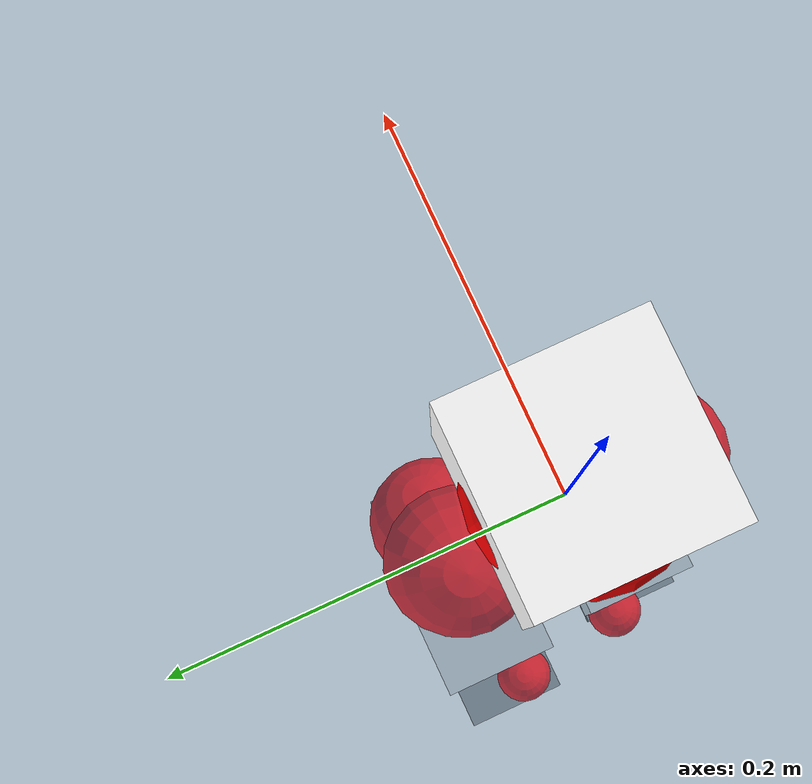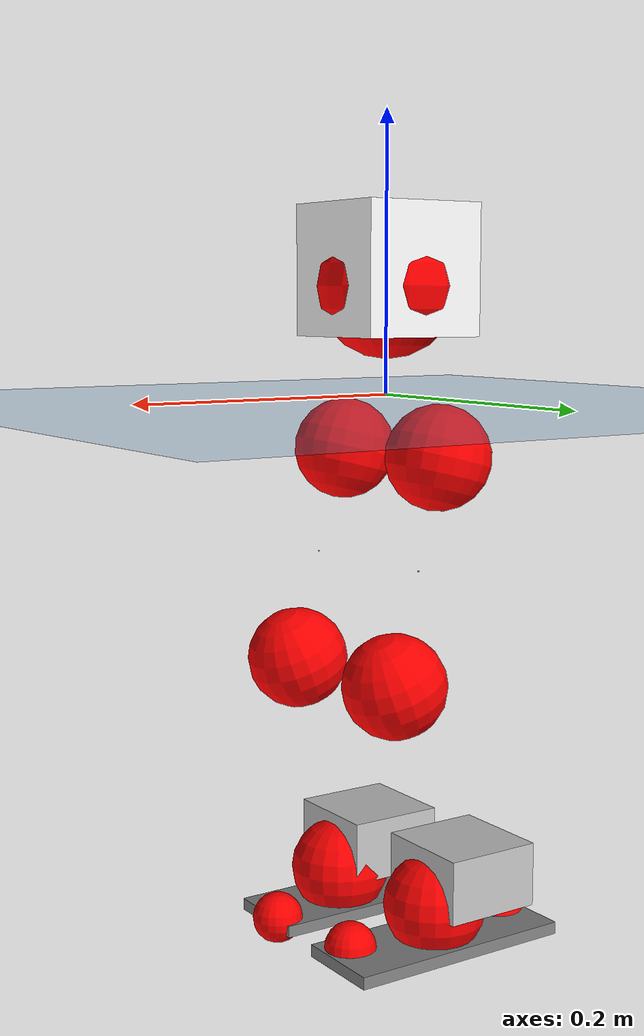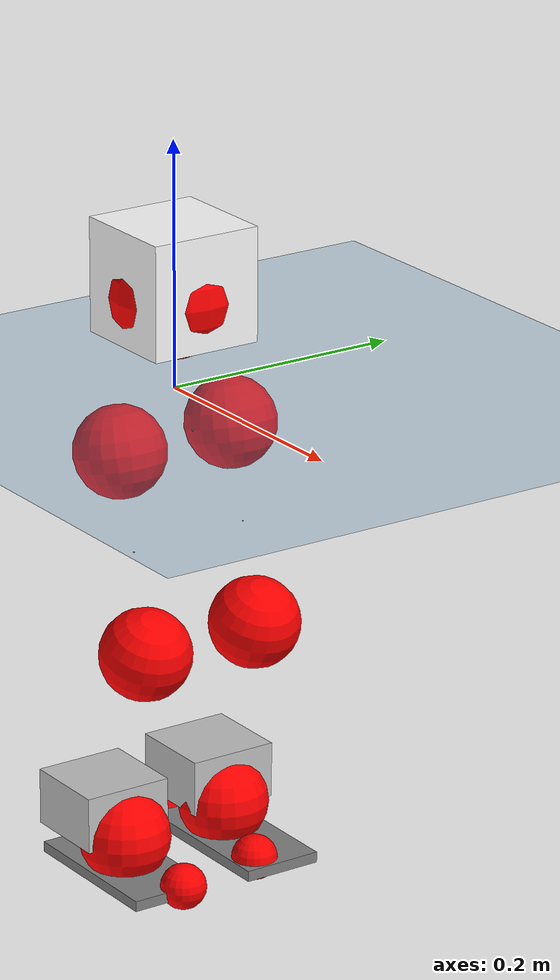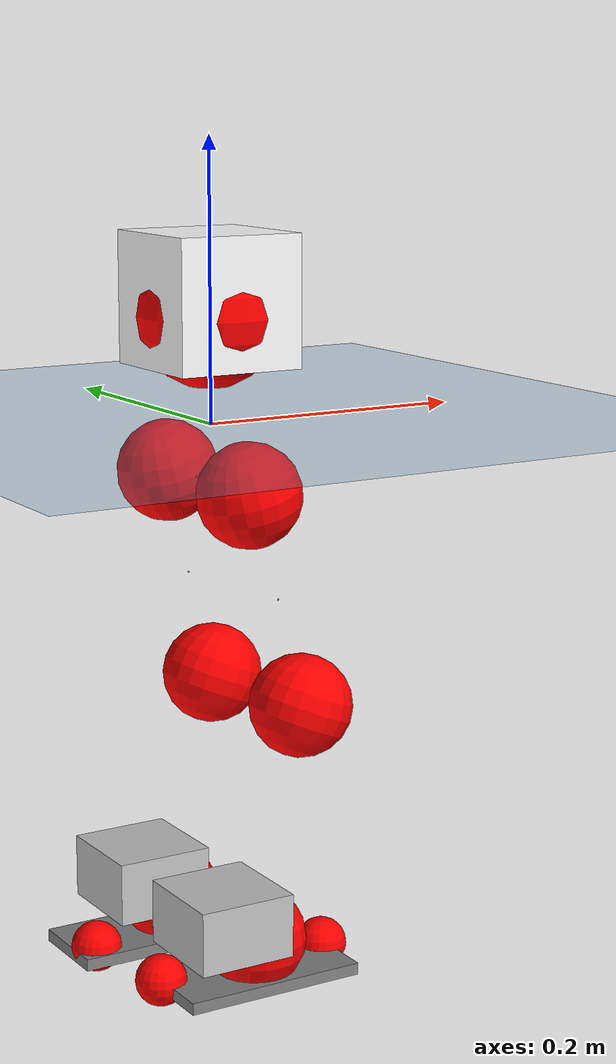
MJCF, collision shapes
<mujoco model="pi_12dof_release_v1">
  <compiler angle="radian" assetdir="assets" balanceinertia="true" inertiafromgeom="false"/>

  <option timestep="0.005" density="1.2" viscosity="2e-05"/>

  <size nkey="1"/>

  <visual>
    <quality shadowsize="8192"/>
    <map shadowclip="0.5"/>
  </visual>

  <default>
    <default class="/">
      <joint armature="0.01" damping="0.01" frictionloss="0.01"/>
      <geom contype="0" conaffinity="0" group="1" solref="-1000 -80"/>
      <site size="0.01 0.005 0.005" group="5"/>
      <general forcelimited="true" biastype="affine" gainprm="20" biasprm="0 -20 -0.5"/>
      <default class="foot">
        <geom size="0.0845 0.036 0.005" type="box" condim="6" group="4" priority="1" friction="0.9 0.2 0.2" solimp="0.015 1 0.005"/>
      </default>
      <default class="reward_collision_sphere">
        <geom group="5" rgba="1 0 0 1"/>
      </default>
    </default>
  </default>

  <asset>
    <texture type="skybox" colorspace="auto" name="//unnamed_texture_0" builtin="gradient" rgb1="0.95 0.95 0.95" rgb2="0.95 0.95 0.95" width="100" height="600"/>
    <texture type="2d" colorspace="auto" name="texplane" builtin="checker" rgb1="0.345 0.575 0.748" rgb2="0.345 0.575 0.748" markrgb="1 1 1" width="512" height="512"/>
    <material name="MatPlane" class="/" texture="texplane" texuniform="true" texrepeat="2 2" specular="0.9"/>
    <mesh name="baselink_1" class="/" file="baselink_1.STL"/>
    <mesh name="r_hip_pitch_link" class="/" file="r_hip_pitch_link.STL"/>
    <mesh name="r_hip_roll_link" class="/" file="r_hip_roll_link.STL"/>
    <mesh name="r_thigh_link" class="/" file="r_thigh_link.STL"/>
    <mesh name="r_calf_link" class="/" file="r_calf_link.STL"/>
    <mesh name="r_ankle_pitch_link" class="/" file="r_ankle_pitch_link.STL"/>
    <mesh name="r_ankle_roll_link" class="/" file="r_ankle_roll_link.STL"/>
    <mesh name="l_hip_pitch_link" class="/" file="l_hip_pitch_link.STL"/>
    <mesh name="l_hip_roll_link" class="/" file="l_hip_roll_link.STL"/>
    <mesh name="l_thigh_link" class="/" file="l_thigh_link.STL"/>
    <mesh name="l_calf_link" class="/" file="l_calf_link.STL"/>
    <mesh name="l_ankle_pitch_link" class="/" file="l_ankle_pitch_link.STL"/>
    <mesh name="l_ankle_roll_link" class="/" file="l_ankle_roll_link.STL"/>
  </asset>

  <worldbody>
    <geom name="floor" class="/" size="100 100 0.125" type="plane" group="0" material="MatPlane"/>
    <light name="toplight_shadow" class="/" pos="0 0 5" dir="0.0990148 0.0990148 -0.990148" type="directional" ambient="0.04 0.04 0.04" diffuse="0.55 0.55 0.55" specular="0.12 0.12 0.12"/>
    <light name="toplight_fill" class="/" pos="0 0 5" dir="0.0990148 0.0990148 -0.990148" type="directional" castshadow="false" ambient="0.04 0.04 0.04" diffuse="0.3 0.3 0.3" specular="0.08 0.08 0.08"/>
    <body name="trunk" pos="-0.00087627 -0.000321595 -0.00264755" quat="1 -0.000299342 -5.31665e-05 0.000109971">
      <inertial pos="7.86397e-05 -0.00192478 0.0485166" quat="0.688505 0.0126156 0.00605295 0.725097" mass="1.77492" diaginertia="0.00996024 0.00121073 0.00808996"/>
      <joint name="//unnamed_joint_0" type="free"/>
      <geom name="//unnamed_geom_1" class="/" type="mesh" density="0" rgba="1 1 1 1" mesh="baselink_1"/>
      <geom name="//unnamed_geom_2" class="/" size="0.0465988 0.0465988 0.0465988" pos="0 0 0.0908475" type="box" rgba="1 1 1 1"/>
      <geom name="//unnamed_geom_3" class="reward_collision_sphere" size="0.0512587" pos="0 0 0.0794915"/>
      <site name="imu" class="/" pos="-0.0016916 0.00144793 0.00813174" size="0.00931976"/>
      <camera name="track" class="/" pos="0 -1.33419 0" quat="0.707107 0.707107 0 0" mode="trackcom"/>
      <camera name="ego_camera" class="/" pos="0.074493 0 0.204407" quat="-0.5 -0.5 0.5 0.5"/>
      <body name="r_hip_pitch_link" pos="0.00144805 -0.0163051 -0.0374122" quat="0.992214 0.000712334 -0.124539 0.00117564">
        <inertial pos="0.002453 -0.0405712 0.000863054" quat="-0.0184486 0.702155 -0.0415348 0.710573" mass="0.297934" diaginertia="0.000104677 1.31219e-05 0.000162506"/>
        <joint name="r_hip_pitch_joint" class="/" pos="0 0 0" axis="0.000671266 -1 -0.000714608" range="-1.75415 1.22796" armature="0.00810146" damping="0.00887681" frictionloss="0.00834521"/>
        <geom name="//unnamed_geom_4" class="/" type="mesh" density="0" rgba="0.75294 0.75294 0.75294 1" mesh="r_hip_pitch_link"/>
        <geom name="//unnamed_geom_5" class="/" size="0.000465988 0.000465988 0.000465988" type="box" rgba="0.75294 0.75294 0.75294 1"/>
        <body name="r_hip_roll_link" pos="3.36019e-05 -0.0350136 -0.00196133" quat="1 -6.61253e-05 -3.66458e-05 -0.000140263">
          <inertial pos="0.00160136 3.72384e-05 -0.0679017" quat="0.701395 -0.0759422 -0.0823702 0.703912" mass="0.321411" diaginertia="0.000313699 3.62037e-05 0.000238779"/>
          <joint name="r_hip_roll_joint" class="/" pos="0 0 0" axis="-0.999999 0.000801688 -0.000941171" range="-0.149863 0.538424" armature="0.00800907" damping="0.008042" frictionloss="0.010488"/>
          <geom name="//unnamed_geom_6" class="/" type="mesh" density="0" rgba="0.75294 0.75294 0.75294 1" mesh="r_hip_roll_link"/>
          <geom name="//unnamed_geom_7" class="/" size="0.000465988 0.000465988 0.000465988" type="box" rgba="0.75294 0.75294 0.75294 1"/>
          <geom name="//unnamed_geom_8" class="reward_collision_sphere" size="0.037279"/>
          <body name="r_thigh_link" pos="0.00249568 -0.00196844 -0.0791332" quat="1 -0.00011215 0.000525927 -0.000771272">
            <inertial pos="-0.000196585 -0.000284817 -0.0552565" quat="0.733027 0.680198 0.00110554 -0.000270141" mass="0.0890634" diaginertia="0.000116714 1.24753e-05 0.000104488"/>
            <joint name="r_thigh_joint" class="/" pos="0 0 0" axis="0.00130005 -0.0158721 -0.999873" stiffness="0.00977561" range="-0.259363 0.628476" armature="0.00968249" damping="0.00674808" frictionloss="0.00933843"/>
            <geom name="//unnamed_geom_9" class="/" type="mesh" density="0" rgba="0.75294 0.75294 0.75294 1" mesh="r_thigh_link"/>
            <geom name="//unnamed_geom_10" class="/" size="0.000465988 0.000465988 0.000465988" type="box" rgba="0.75294 0.75294 0.75294 1"/>
            <body name="r_calf_link" pos="-0.0022227 -0.00148865 -0.0812002" quat="0.947817 0.00033526 0.318813 -0.00039942">
              <inertial pos="0.00131317 -0.000123026 -0.0800948" quat="0.999988 -0.00209393 0.000217023 0.0043567" mass="0.67167" diaginertia="0.00340825 0.000495413 0.000340418"/>
              <joint name="r_calf_joint" class="/" pos="0 0 0" axis="0.00884468 -0.999947 -0.00530603" range="-1.62896 0.704472" armature="0.00803215" damping="0.0212846" frictionloss="0.00803926"/>
              <geom name="//unnamed_geom_11" class="/" type="mesh" density="0" rgba="0.75294 0.75294 0.75294 1" mesh="r_calf_link"/>
              <geom name="//unnamed_geom_12" class="/" size="0.000465988 0.000465988 0.000465988" type="box" rgba="0.75294 0.75294 0.75294 1"/>
              <geom name="//unnamed_geom_13" class="reward_collision_sphere" size="0.037279"/>
              <body name="r_ankle_pitch_link" pos="-0.00135983 0.000499443 -0.161582" quat="0.980071 1.27287e-05 -0.19865 2.79368e-06">
                <inertial pos="0.0050138 0.00238923 0.000688034" quat="0.00183914 0.712618 0.00210384 0.701546" mass="0.136411" diaginertia="0.000285516 2.94179e-05 0.000226888"/>
                <joint name="r_ankle_pitch_joint" class="/" pos="0 0 0" axis="-0.000924534 -0.999977 0.00667574" range="-1.32263 0.511459" armature="0.00906606" damping="0" frictionloss="0.00926875"/>
                <geom name="//unnamed_geom_14" class="/" type="mesh" density="0" rgba="0.75294 0.75294 0.75294 1" mesh="r_ankle_pitch_link"/>
                <geom name="//unnamed_geom_15" class="/" size="0.036347 0.037279 0.0232994" type="box" rgba="0.75294 0.75294 0.75294 1"/>
                <body name="r_ankle_roll_link" pos="0.0775036 0.00176908 0.00194655" quat="1 0.000181038 -0.000213279 -0.0002747">
                  <inertial pos="-0.0240845 0.000546145 -0.015245" quat="0.554074 0.438842 0.44172 0.552542" mass="0.420319" diaginertia="0.00108645 0.000132486 0.000528025"/>
                  <joint name="r_ankle_roll_joint" class="/" pos="0 0 0" axis="-0.999984 0.00508506 0.00260516" range="-0.206658 0.201809" armature="0.0103535" damping="0" frictionloss="0.0101638"/>
                  <geom name="//unnamed_geom_16" class="/" type="mesh" density="0" rgba="0.75294 0.75294 0.75294 1" mesh="r_ankle_roll_link"/>
                  <geom name="//unnamed_geom_17" class="/" type="mesh" rgba="0.75294 0.75294 0.75294 1" mesh="r_ankle_roll_link"/>
                  <geom name="right_foot" class="foot" size="0.0682935 0.0331053 0.00431846" pos="-0.0506552 0 -0.0499661"/>
                  <geom name="//unnamed_geom_19" class="reward_collision_sphere" size="0.037279" pos="-0.049662 0 -0.0227119"/>
                  <geom name="//unnamed_geom_20" class="reward_collision_sphere" size="0.0186395" pos="0.0148986 0.0133419 -0.0454237"/>
                  <geom name="//unnamed_geom_21" class="reward_collision_sphere" size="0.0186395" pos="-0.119189 0.0133419 -0.0454237"/>
                  <site name="right_foot" class="foot" pos="-0.0506552 0 -0.0499661" size="0.00931976"/>
                </body>
              </body>
            </body>
          </body>
        </body>
      </body>
      <body name="l_hip_pitch_link" pos="-0.00104082 0.0181938 -0.0370104" quat="0.992132 0.000184085 -0.125195 0.000310106">
        <inertial pos="0.00376529 0.037295 -0.000985232" quat="-0.0316868 0.712535 0.0368543 0.699951" mass="0.317451" diaginertia="0.000117983 1.36685e-05 0.00018194"/>
        <joint name="l_hip_pitch_joint" class="/" pos="0 0 0" axis="0.00429315 0.999931 -0.0109785" range="-1.27756 1.76293" armature="0.00975737" damping="0.0107165" frictionloss="0.00917785"/>
        <geom name="//unnamed_geom_22" class="/" type="mesh" density="0" rgba="0.75294 0.75294 0.75294 1" mesh="l_hip_pitch_link"/>
        <geom name="//unnamed_geom_23" class="/" size="0.000465988 0.000465988 0.000465988" type="box" rgba="0.75294 0.75294 0.75294 1"/>
        <body name="l_hip_roll_link" pos="-0.00326793 0.0378672 -0.000227561" quat="1 -3.37279e-06 -3.43523e-06 -2.75755e-06">
          <inertial pos="-0.00081478 0.00215253 -0.0697966" quat="0.698588 -0.0744259 -0.0735173 0.707835" mass="0.315368" diaginertia="0.000323922 3.54603e-05 0.000248463"/>
          <joint name="l_hip_roll_joint" class="/" pos="0 0 0" axis="-0.999994 -0.00112645 -0.0031931" range="-0.491314 0.170873" armature="0.00929696" damping="0" frictionloss="0.00856303"/>
          <geom name="//unnamed_geom_24" class="/" type="mesh" density="0" rgba="0.75294 0.75294 0.75294 1" mesh="l_hip_roll_link"/>
          <geom name="//unnamed_geom_25" class="/" size="0.000465988 0.000465988 0.000465988" type="box" rgba="0.75294 0.75294 0.75294 1"/>
          <geom name="//unnamed_geom_26" class="reward_collision_sphere" size="0.037279"/>
          <body name="l_thigh_link" pos="-0.00331046 0.000301084 -0.0799418" quat="0.999999 -0.000312941 0.000935921 0.000523053">
            <inertial pos="0.000354549 -0.00100804 -0.0525898" quat="0.675592 0.737275 0.000472498 -0.00111976" mass="0.0914606" diaginertia="0.000119819 1.24828e-05 0.000109502"/>
            <joint name="l_thigh_joint" class="/" pos="0 0 0" axis="0.0115703 -0.000134571 -0.999933" stiffness="0.00122533" range="-0.659001 0.352822" armature="0.010583" damping="0" frictionloss="0.0106194"/>
            <geom name="//unnamed_geom_27" class="/" type="mesh" density="0" rgba="0.75294 0.75294 0.75294 1" mesh="l_thigh_link"/>
            <geom name="//unnamed_geom_28" class="/" size="0.000465988 0.000465988 0.000465988" type="box" rgba="0.75294 0.75294 0.75294 1"/>
            <body name="l_calf_link" pos="-0.00145073 -0.00121626 -0.0816209" quat="0.94775 -0.000505037 0.319011 0.000969017">
              <inertial pos="-0.000866319 0.00216791 -0.0775404" quat="0.999949 -0.00131426 -0.0032045 0.00953583" mass="0.635143" diaginertia="0.00329969 0.000447238 0.00031545"/>
              <joint name="l_calf_joint" class="/" pos="0 0 0" axis="-0.00619992 0.99995 -0.00787561" range="-0.606123 1.65778" armature="0.00859127" damping="0.00539081" frictionloss="0.008595"/>
              <geom name="//unnamed_geom_29" class="/" type="mesh" density="0" rgba="0.75294 0.75294 0.75294 1" mesh="l_calf_link"/>
              <geom name="//unnamed_geom_30" class="/" size="0.000465988 0.000465988 0.000465988" type="box" rgba="0.75294 0.75294 0.75294 1"/>
              <geom name="//unnamed_geom_31" class="reward_collision_sphere" size="0.037279"/>
              <body name="l_ankle_pitch_link" pos="-0.000962249 -0.00226572 -0.158185" quat="0.980107 -0.000542461 -0.19847 8.22746e-05">
                <inertial pos="0.007451 -0.001929 -3.3503e-05" quat="-0.00216178 0.707006 0.00199396 0.707202" mass="0.141352" diaginertia="0.000290611 2.89942e-05 0.000228603"/>
                <joint name="l_ankle_pitch_joint" class="/" pos="0 0 0" axis="-0.00985315 0.999926 0.00717816" range="-0.492794 1.3177" armature="0.00950228" damping="0" frictionloss="0.00915302"/>
                <geom name="//unnamed_geom_32" class="/" type="mesh" density="0" rgba="0.75294 0.75294 0.75294 1" mesh="l_ankle_pitch_link"/>
                <geom name="//unnamed_geom_33" class="/" size="0.036347 0.037279 0.0232994" type="box" rgba="0.75294 0.75294 0.75294 1"/>
                <body name="l_ankle_roll_link" pos="0.0729127 -0.00121462 0.000742416" quat="0.999999 0.00122583 0.000422685 -0.000198489">
                  <inertial pos="-0.0269296 -0.000491855 -0.0172312" quat="0.5657 0.426082 0.437829 0.553843" mass="0.411863" diaginertia="0.00104257 0.000138067 0.000522378"/>
                  <joint name="l_ankle_roll_joint" class="/" pos="0 0 0" axis="-0.999987 -0.00501 -0.000102024" range="-0.160927 0.148364" armature="0.00846074" damping="0.00650259" frictionloss="0.00897676"/>
                  <geom name="//unnamed_geom_34" class="/" type="mesh" density="0" rgba="0.75294 0.75294 0.75294 1" mesh="l_ankle_roll_link"/>
                  <geom name="//unnamed_geom_35" class="/" type="mesh" rgba="0.75294 0.75294 0.75294 1" mesh="l_ankle_roll_link"/>
                  <geom name="left_foot" class="foot" size="0.0859198 0.0331085 0.00444294" pos="-0.0506552 0 -0.0499661"/>
                  <geom name="//unnamed_geom_37" class="reward_collision_sphere" size="0.037279" pos="-0.049662 0 -0.0227119"/>
                  <geom name="//unnamed_geom_38" class="reward_collision_sphere" size="0.0186395" pos="0.0148986 -0.0133419 -0.0454237"/>
                  <geom name="//unnamed_geom_39" class="reward_collision_sphere" size="0.0186395" pos="-0.119189 -0.0133419 -0.0454237"/>
                  <site name="left_foot" class="foot" pos="-0.0506552 0 -0.0499661" size="0.00931976"/>
                </body>
              </body>
            </body>
          </body>
        </body>
      </body>
    </body>
  </worldbody>

  <contact>
    <pair class="/" geom1="floor" geom2="right_foot" name="//unnamed_contact_1"/>
    <pair class="/" geom1="floor" geom2="left_foot" name="//unnamed_contact_0"/>
  </contact>

  <actuator>
    <general name="r_hip_pitch_joint" class="/" joint="r_hip_pitch_joint" forcerange="-21.2148 21.2148" gainprm="18.7774" biasprm="0 -18.7774 -0.484101"/>
    <general name="r_hip_roll_joint" class="/" joint="r_hip_roll_joint" forcerange="-18.1269 18.1269" gainprm="18.7774" biasprm="0 -18.7774 -0.484101"/>
    <general name="r_thigh_joint" class="/" joint="r_thigh_joint" forcerange="-21.3989 21.3989" gainprm="18.7774" biasprm="0 -18.7774 -0.484101"/>
    <general name="r_calf_joint" class="/" joint="r_calf_joint" forcerange="-20.0098 20.0098" gainprm="18.7774" biasprm="0 -18.7774 -0.484101"/>
    <general name="r_ankle_pitch_joint" class="/" joint="r_ankle_pitch_joint" forcerange="-18.0291 18.0291" gainprm="18.7774" biasprm="0 -18.7774 -0.484101"/>
    <general name="r_ankle_roll_joint" class="/" joint="r_ankle_roll_joint" forcerange="-19.3787 19.3787" gainprm="18.7774" biasprm="0 -18.7774 -0.484101"/>
    <general name="l_hip_pitch_joint" class="/" joint="l_hip_pitch_joint" forcerange="-19.6527 19.6527" gainprm="18.7774" biasprm="0 -18.7774 -0.484101"/>
    <general name="l_hip_roll_joint" class="/" joint="l_hip_roll_joint" forcerange="-17.5275 17.5275" gainprm="18.7774" biasprm="0 -18.7774 -0.484101"/>
    <general name="l_thigh_joint" class="/" joint="l_thigh_joint" forcerange="-18.707 18.707" gainprm="18.7774" biasprm="0 -18.7774 -0.484101"/>
    <general name="l_calf_joint" class="/" joint="l_calf_joint" forcerange="-17.5124 17.5124" gainprm="18.7774" biasprm="0 -18.7774 -0.484101"/>
    <general name="l_ankle_pitch_joint" class="/" joint="l_ankle_pitch_joint" forcerange="-21.4836 21.4836" gainprm="18.7774" biasprm="0 -18.7774 -0.484101"/>
    <general name="l_ankle_roll_joint" class="/" joint="l_ankle_roll_joint" forcerange="-18.3069 18.3069" gainprm="18.7774" biasprm="0 -18.7774 -0.484101"/>
  </actuator>

  <sensor>
    <gyro site="imu" name="imu_angular_velocity"/>
    <velocimeter site="imu" name="imu_linear_velocity"/>
    <framelinvel objtype="site" objname="left_foot" name="left_foot_global_linear_velocity"/>
    <framelinvel objtype="site" objname="right_foot" name="right_foot_global_linear_velocity"/>
  </sensor>

  <keyframe>
    <key name="home" qpos="0 0 0.291 1 0 0 0 0.4 0 0 -0.8 0.4 0 -0.4 0 0 0.8 -0.4 0"/>
  </keyframe>
</mujoco>
